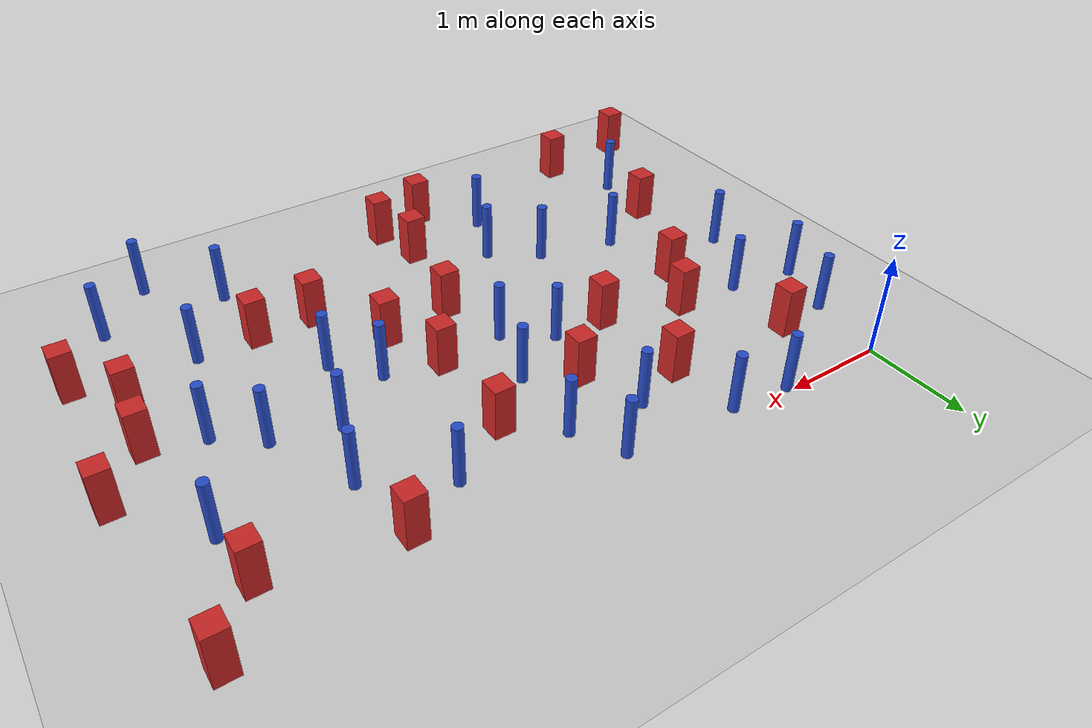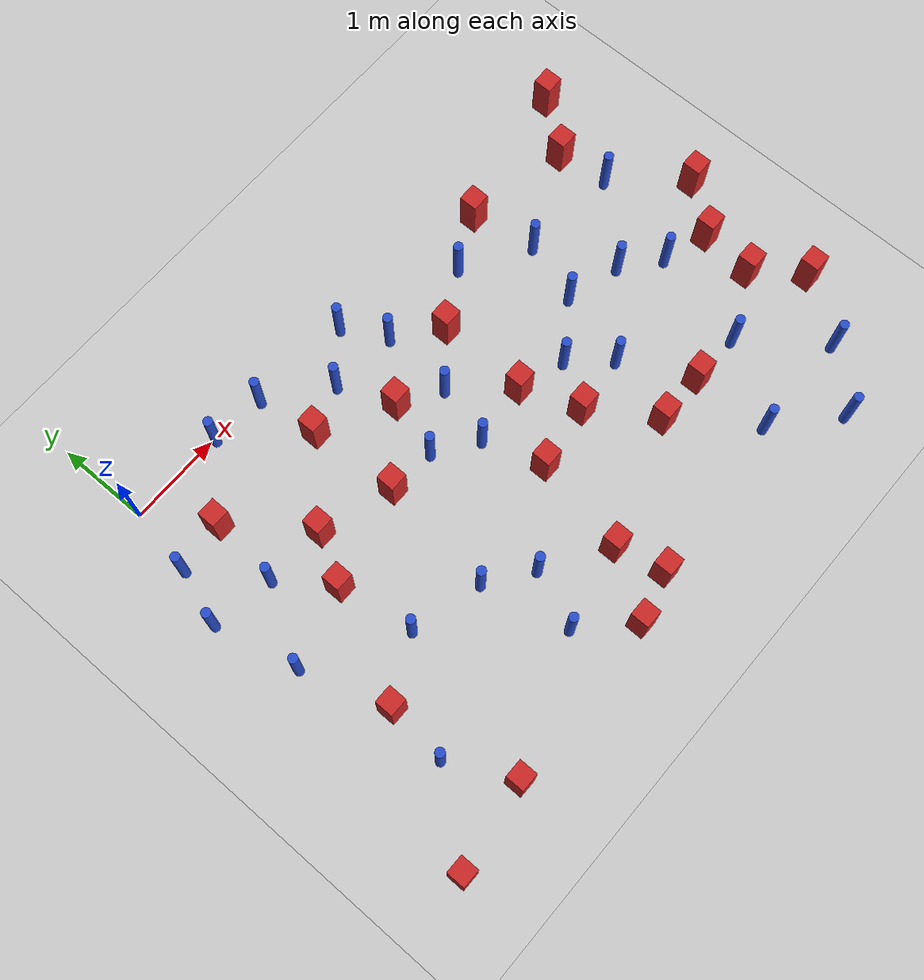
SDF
<sdf version="1.6">
 <world name="default">
  <model name="ground_plane">
   <static>1</static>
   <link name="link">
    <collision name="collision">
     <geometry><plane><normal>0 0 1</normal><size>100 100</size></plane></geometry>
     <surface><friction><ode><mu>100</mu><mu2>50</mu2></ode></friction></surface>
    </collision>
    <visual name="visual">
     <cast_shadows>0</cast_shadows>
     <geometry><plane><normal>0 0 1</normal><size>100 100</size></plane></geometry>
     <material>
      <ambient>1.0 1.0 1.0 1.0</ambient>
      <diffuse>0.8 0.8 0.8 1.0</diffuse>
      <specular>0.01 0.01 0.01 1.000000</specular>
     </material>
    </visual>
   </link>
  </model>
  <model name="square_post_obstacle1">
   <static>true</static>
   <pose>2.94212230356 -2.67743986622 -6.11067671241e-07 -5.50515727128e-06 -8.79689657224e-07 2.37013304536e-05</pose>
   <link name="link">
    <pose>0 0 0.25 0 -0 0</pose>
    <inertial>
     <mass>100</mass>
     <inertia>
      <ixx>0.166667</ixx>
      <ixy>0</ixy>
      <ixz>0</ixz>
      <iyy>0.166667</iyy>
      <iyz>0</iyz>
      <izz>0.166667</izz>
     </inertia>
    </inertial>
    <collision name="collision"><geometry><box><size>.2 .2 .5</size></box></geometry></collision>
    <visual name="visual">
     <geometry><box><size>.2 .2 .5</size></box></geometry>
     <material>
      <script><name>Gazebo/Red</name><uri>file://media/materials/scripts/gazebo.material</uri></script>
     </material>
    </visual>
   </link>
  </model>
  <model name="pole_obstacle0">
   <static>true</static>
   <pose>-0.314921129882 -1.32646130541 -9.47619616065e-06 5.49618799738e-07 2.3631041406e-07 -1.550905348e-07</pose>
   <link name="link">
    <pose>0 0 0.3 0 -0 0</pose>
    <inertial>
     <mass>1</mass>
     <inertia><ixx>0.145833</ixx><ixy>0</ixy><ixz>0</ixz><iyy>0.145833</iyy><iyz>0</iyz><izz>0.125</izz></inertia>
    </inertial>
    <collision name="collision">
     <geometry><cylinder><radius>0.05</radius><length>.6</length></cylinder></geometry>
    </collision>
    <visual name="visual">
     <geometry><cylinder><radius>0.05</radius><length>.6</length></cylinder></geometry>
     <material>
      <script><name>Gazebo/Blue</name><uri>file://media/materials/scripts/gazebo.material</uri></script>
     </material>
    </visual>
   </link>
  </model>
  <model name="pole_obstacle1">
   <static>true</static>
   <pose>1.61974641759 -2.97407490253 -9.47619616065e-06 5.49618799737e-07 2.36310414062e-07 -1.55090534798e-07</pose>
   <link name="link">
    <pose>0 0 0.3 0 -0 0</pose>
    <inertial>
     <mass>1</mass>
     <inertia><ixx>0.145833</ixx><ixy>0</ixy><ixz>0</ixz><iyy>0.145833</iyy><iyz>0</iyz><izz>0.125</izz></inertia>
    </inertial>
    <collision name="collision">
     <geometry><cylinder><radius>0.05</radius><length>.6</length></cylinder></geometry>
    </collision>
    <visual name="visual">
     <geometry><cylinder><radius>0.05</radius><length>.6</length></cylinder></geometry>
     <material>
      <script><name>Gazebo/Blue</name><uri>file://media/materials/scripts/gazebo.material</uri></script>
     </material>
    </visual>
   </link>
  </model>
  <model name="pole_obstacle2">
   <static>true</static>
   <pose>2.73644294295 -2.04410735157 -9.47619616065e-06 5.49618799737e-07 2.36310414068e-07 -1.55090534797e-07</pose>
   <link name="link">
    <pose>0 0 0.3 0 -0 0</pose>
    <inertial>
     <mass>1</mass>
     <inertia><ixx>0.145833</ixx><ixy>0</ixy><ixz>0</ixz><iyy>0.145833</iyy><iyz>0</iyz><izz>0.125</izz></inertia>
    </inertial>
    <collision name="collision">
     <geometry><cylinder><radius>0.05</radius><length>.6</length></cylinder></geometry>
    </collision>
    <visual name="visual">
     <geometry><cylinder><radius>0.05</radius><length>.6</length></cylinder></geometry>
     <material>
      <script><name>Gazebo/Blue</name><uri>file://media/materials/scripts/gazebo.material</uri></script>
     </material>
    </visual>
   </link>
  </model>
  <model name="square_post_obstacle8">
   <static>true</static>
   <pose>0.454852173999 -4.42956170193 -6.11067671241e-07 -5.50515727128e-06 -8.79689657224e-07 2.37013304536e-05</pose>
   <link name="link">
    <pose>0 0 0.25 0 -0 0</pose>
    <inertial>
     <mass>100</mass>
     <inertia>
      <ixx>0.166667</ixx>
      <ixy>0</ixy>
      <ixz>0</ixz>
      <iyy>0.166667</iyy>
      <iyz>0</iyz>
      <izz>0.166667</izz>
     </inertia>
    </inertial>
    <collision name="collision"><geometry><box><size>.2 .2 .5</size></box></geometry></collision>
    <visual name="visual">
     <geometry><box><size>.2 .2 .5</size></box></geometry>
     <material>
      <script><name>Gazebo/Red</name><uri>file://media/materials/scripts/gazebo.material</uri></script>
     </material>
    </visual>
   </link>
  </model>
  <model name="pole_obstacle9">
   <static>true</static>
   <pose>-0.106066016489 -2.21200483704 -9.47619616065e-06 5.49618799737e-07 2.36310414067e-07 -1.55090534797e-07</pose>
   <link name="link">
    <pose>0 0 0.3 0 -0 0</pose>
    <inertial>
     <mass>1</mass>
     <inertia><ixx>0.145833</ixx><ixy>0</ixy><ixz>0</ixz><iyy>0.145833</iyy><iyz>0</iyz><izz>0.125</izz></inertia>
    </inertial>
    <collision name="collision">
     <geometry><cylinder><radius>0.05</radius><length>.6</length></cylinder></geometry>
    </collision>
    <visual name="visual">
     <geometry><cylinder><radius>0.05</radius><length>.6</length></cylinder></geometry>
     <material>
      <script><name>Gazebo/Blue</name><uri>file://media/materials/scripts/gazebo.material</uri></script>
     </material>
    </visual>
   </link>
  </model>
  <model name="square_post_obstacle18">
   <static>true</static>
   <pose>1.72993242123 -0.749958943842 -6.11067671241e-07 -5.50515727128e-06 -8.79689657224e-07 2.37013304536e-05</pose>
   <link name="link">
    <pose>0 0 0.25 0 -0 0</pose>
    <inertial>
     <mass>100</mass>
     <inertia>
      <ixx>0.166667</ixx>
      <ixy>0</ixy>
      <ixz>0</ixz>
      <iyy>0.166667</iyy>
      <iyz>0</iyz>
      <izz>0.166667</izz>
     </inertia>
    </inertial>
    <collision name="collision"><geometry><box><size>.2 .2 .5</size></box></geometry></collision>
    <visual name="visual">
     <geometry><box><size>.2 .2 .5</size></box></geometry>
     <material>
      <script><name>Gazebo/Red</name><uri>file://media/materials/scripts/gazebo.material</uri></script>
     </material>
    </visual>
   </link>
  </model>
  <model name="pole_obstacle11">
   <static>true</static>
   <pose>5.82223751273 -4.05995197227 -9.47619616065e-06 5.49618799737e-07 2.36310414037e-07 -1.55090534814e-07</pose>
   <link name="link">
    <pose>0 0 0.3 0 -0 0</pose>
    <inertial>
     <mass>1</mass>
     <inertia><ixx>0.145833</ixx><ixy>0</ixy><ixz>0</ixz><iyy>0.145833</iyy><iyz>0</iyz><izz>0.125</izz></inertia>
    </inertial>
    <collision name="collision">
     <geometry><cylinder><radius>0.05</radius><length>.6</length></cylinder></geometry>
    </collision>
    <visual name="visual">
     <geometry><cylinder><radius>0.05</radius><length>.6</length></cylinder></geometry>
     <material>
      <script><name>Gazebo/Blue</name><uri>file://media/materials/scripts/gazebo.material</uri></script>
     </material>
    </visual>
   </link>
  </model>
  <model name="square_post_obstacle20">
   <static>true</static>
   <pose>2.73544408895 -3.70505050873 -6.11067671241e-07 -5.50515727128e-06 -8.79689657224e-07 2.37013304536e-05</pose>
   <link name="link">
    <pose>0 0 0.25 0 -0 0</pose>
    <inertial>
     <mass>100</mass>
     <inertia>
      <ixx>0.166667</ixx>
      <ixy>0</ixy>
      <ixz>0</ixz>
      <iyy>0.166667</iyy>
      <iyz>0</iyz>
      <izz>0.166667</izz>
     </inertia>
    </inertial>
    <collision name="collision"><geometry><box><size>.2 .2 .5</size></box></geometry></collision>
    <visual name="visual">
     <geometry><box><size>.2 .2 .5</size></box></geometry>
     <material>
      <script><name>Gazebo/Red</name><uri>file://media/materials/scripts/gazebo.material</uri></script>
     </material>
    </visual>
   </link>
  </model>
  <model name="square_post_obstacle25">
   <static>true</static>
   <pose>5.96807700137 -2.33672775051 -6.11067671241e-07 -5.50515727128e-06 -8.79689657224e-07 2.37013304536e-05</pose>
   <link name="link">
    <pose>0 0 0.25 0 -0 0</pose>
    <inertial>
     <mass>100</mass>
     <inertia>
      <ixx>0.166667</ixx>
      <ixy>0</ixy>
      <ixz>0</ixz>
      <iyy>0.166667</iyy>
      <iyz>0</iyz>
      <izz>0.166667</izz>
     </inertia>
    </inertial>
    <collision name="collision"><geometry><box><size>.2 .2 .5</size></box></geometry></collision>
    <visual name="visual">
     <geometry><box><size>.2 .2 .5</size></box></geometry>
     <material>
      <script><name>Gazebo/Red</name><uri>file://media/materials/scripts/gazebo.material</uri></script>
     </material>
    </visual>
   </link>
  </model>
  <model name="square_post_obstacle30">
   <static>true</static>
   <pose>2.47274782029 -1.15429920534 -6.11067671241e-07 -5.50515727128e-06 -8.79689657224e-07 2.37013304536e-05</pose>
   <link name="link">
    <pose>0 0 0.25 0 -0 0</pose>
    <inertial>
     <mass>100</mass>
     <inertia>
      <ixx>0.166667</ixx>
      <ixy>0</ixy>
      <ixz>0</ixz>
      <iyy>0.166667</iyy>
      <iyz>0</iyz>
      <izz>0.166667</izz>
     </inertia>
    </inertial>
    <collision name="collision"><geometry><box><size>.2 .2 .5</size></box></geometry></collision>
    <visual name="visual">
     <geometry><box><size>.2 .2 .5</size></box></geometry>
     <material>
      <script><name>Gazebo/Red</name><uri>file://media/materials/scripts/gazebo.material</uri></script>
     </material>
    </visual>
   </link>
  </model>
  <model name="pole_obstacle24">
   <static>true</static>
   <pose>2.72150293839 -0.171318101802 -9.47619616065e-06 5.49618799738e-07 2.36310414078e-07 -1.55090534791e-07</pose>
   <link name="link">
    <pose>0 0 0.3 0 -0 0</pose>
    <inertial>
     <mass>1</mass>
     <inertia><ixx>0.145833</ixx><ixy>0</ixy><ixz>0</ixz><iyy>0.145833</iyy><iyz>0</iyz><izz>0.125</izz></inertia>
    </inertial>
    <collision name="collision">
     <geometry><cylinder><radius>0.05</radius><length>.6</length></cylinder></geometry>
    </collision>
    <visual name="visual">
     <geometry><cylinder><radius>0.05</radius><length>.6</length></cylinder></geometry>
     <material>
      <script><name>Gazebo/Blue</name><uri>file://media/materials/scripts/gazebo.material</uri></script>
     </material>
    </visual>
   </link>
  </model>
  <model name="pole_obstacle30">
   <static>true</static>
   <pose>0.856079274382 -2.77888932813 -9.47619616065e-06 5.49618799737e-07 2.36310414066e-07 -1.55090534797e-07</pose>
   <link name="link">
    <pose>0 0 0.3 0 -0 0</pose>
    <inertial>
     <mass>1</mass>
     <inertia><ixx>0.145833</ixx><ixy>0</ixy><ixz>0</ixz><iyy>0.145833</iyy><iyz>0</iyz><izz>0.125</izz></inertia>
    </inertial>
    <collision name="collision">
     <geometry><cylinder><radius>0.05</radius><length>.6</length></cylinder></geometry>
    </collision>
    <visual name="visual">
     <geometry><cylinder><radius>0.05</radius><length>.6</length></cylinder></geometry>
     <material>
      <script><name>Gazebo/Blue</name><uri>file://media/materials/scripts/gazebo.material</uri></script>
     </material>
    </visual>
   </link>
  </model>
  <model name="square_post_obstacle38">
   <static>true</static>
   <pose>5.90269975927 -2.90858548507 -6.11067671241e-07 -5.50515727128e-06 -8.79689657224e-07 2.37013304536e-05</pose>
   <link name="link">
    <pose>0 0 0.25 0 -0 0</pose>
    <inertial>
     <mass>100</mass>
     <inertia>
      <ixx>0.166667</ixx>
      <ixy>0</ixy>
      <ixz>0</ixz>
      <iyy>0.166667</iyy>
      <iyz>0</iyz>
      <izz>0.166667</izz>
     </inertia>
    </inertial>
    <collision name="collision"><geometry><box><size>.2 .2 .5</size></box></geometry></collision>
    <visual name="visual">
     <geometry><box><size>.2 .2 .5</size></box></geometry>
     <material>
      <script><name>Gazebo/Red</name><uri>file://media/materials/scripts/gazebo.material</uri></script>
     </material>
    </visual>
   </link>
  </model>
  <model name="pole_obstacle45">
   <static>true</static>
   <pose>1.03866609675 -0.046950758375 -9.47619616065e-06 5.49618799737e-07 2.36310414067e-07 -1.55090534796e-07</pose>
   <link name="link">
    <pose>0 0 0.3 0 -0 0</pose>
    <inertial>
     <mass>1</mass>
     <inertia><ixx>0.145833</ixx><ixy>0</ixy><ixz>0</ixz><iyy>0.145833</iyy><iyz>0</iyz><izz>0.125</izz></inertia>
    </inertial>
    <collision name="collision">
     <geometry><cylinder><radius>0.05</radius><length>.6</length></cylinder></geometry>
    </collision>
    <visual name="visual">
     <geometry><cylinder><radius>0.05</radius><length>.6</length></cylinder></geometry>
     <material>
      <script><name>Gazebo/Blue</name><uri>file://media/materials/scripts/gazebo.material</uri></script>
     </material>
    </visual>
   </link>
  </model>
  <model name="square_post_obstacle43">
   <static>true</static>
   <pose>1.01374531851 -1.47006053534 -6.11067671241e-07 -5.50515727128e-06 -8.79689657224e-07 2.37013304536e-05</pose>
   <link name="link">
    <pose>0 0 0.25 0 -0 0</pose>
    <inertial>
     <mass>100</mass>
     <inertia>
      <ixx>0.166667</ixx>
      <ixy>0</ixy>
      <ixz>0</ixz>
      <iyy>0.166667</iyy>
      <iyz>0</iyz>
      <izz>0.166667</izz>
     </inertia>
    </inertial>
    <collision name="collision"><geometry><box><size>.2 .2 .5</size></box></geometry></collision>
    <visual name="visual">
     <geometry><box><size>.2 .2 .5</size></box></geometry>
     <material>
      <script><name>Gazebo/Red</name><uri>file://media/materials/scripts/gazebo.material</uri></script>
     </material>
    </visual>
   </link>
  </model>
  <model name="square_post_obstacle45">
   <static>true</static>
   <pose>2.32508349181 -4.35911768227 -6.11067671241e-07 -5.50515727128e-06 -8.79689657224e-07 2.37013304536e-05</pose>
   <link name="link">
    <pose>0 0 0.25 0 -0 0</pose>
    <inertial>
     <mass>100</mass>
     <inertia>
      <ixx>0.166667</ixx>
      <ixy>0</ixy>
      <ixz>0</ixz>
      <iyy>0.166667</iyy>
      <iyz>0</iyz>
      <izz>0.166667</izz>
     </inertia>
    </inertial>
    <collision name="collision"><geometry><box><size>.2 .2 .5</size></box></geometry></collision>
    <visual name="visual">
     <geometry><box><size>.2 .2 .5</size></box></geometry>
     <material>
      <script><name>Gazebo/Red</name><uri>file://media/materials/scripts/gazebo.material</uri></script>
     </material>
    </visual>
   </link>
  </model>
  <model name="pole_obstacle59">
   <static>true</static>
   <pose>2.90515638985 -1.41550431469 -9.47619616065e-06 5.49618799737e-07 2.36310414072e-07 -1.55090534793e-07</pose>
   <link name="link">
    <pose>0 0 0.3 0 -0 0</pose>
    <inertial>
     <mass>1</mass>
     <inertia><ixx>0.145833</ixx><ixy>0</ixy><ixz>0</ixz><iyy>0.145833</iyy><iyz>0</iyz><izz>0.125</izz></inertia>
    </inertial>
    <collision name="collision">
     <geometry><cylinder><radius>0.05</radius><length>.6</length></cylinder></geometry>
    </collision>
    <visual name="visual">
     <geometry><cylinder><radius>0.05</radius><length>.6</length></cylinder></geometry>
     <material>
      <script><name>Gazebo/Blue</name><uri>file://media/materials/scripts/gazebo.material</uri></script>
     </material>
    </visual>
   </link>
  </model>
  <model name="square_post_obstacle62">
   <static>true</static>
   <pose>5.72174047184 -0.590726799477 -6.11067671241e-07 -5.50515727128e-06 -8.79689657224e-07 2.37013304536e-05</pose>
   <link name="link">
    <pose>0 0 0.25 0 -0 0</pose>
    <inertial>
     <mass>100</mass>
     <inertia>
      <ixx>0.166667</ixx>
      <ixy>0</ixy>
      <ixz>0</ixz>
      <iyy>0.166667</iyy>
      <iyz>0</iyz>
      <izz>0.166667</izz>
     </inertia>
    </inertial>
    <collision name="collision"><geometry><box><size>.2 .2 .5</size></box></geometry></collision>
    <visual name="visual">
     <geometry><box><size>.2 .2 .5</size></box></geometry>
     <material>
      <script><name>Gazebo/Red</name><uri>file://media/materials/scripts/gazebo.material</uri></script>
     </material>
    </visual>
   </link>
  </model>
  <model name="square_post_obstacle65">
   <static>true</static>
   <pose>6.28163538633 -3.40447437227 -6.11067671241e-07 -5.50515727128e-06 -8.79689657224e-07 2.37013304536e-05</pose>
   <link name="link">
    <pose>0 0 0.25 0 -0 0</pose>
    <inertial>
     <mass>100</mass>
     <inertia>
      <ixx>0.166667</ixx>
      <ixy>0</ixy>
      <ixz>0</ixz>
      <iyy>0.166667</iyy>
      <iyz>0</iyz>
      <izz>0.166667</izz>
     </inertia>
    </inertial>
    <collision name="collision"><geometry><box><size>.2 .2 .5</size></box></geometry></collision>
    <visual name="visual">
     <geometry><box><size>.2 .2 .5</size></box></geometry>
     <material>
      <script><name>Gazebo/Red</name><uri>file://media/materials/scripts/gazebo.material</uri></script>
     </material>
    </visual>
   </link>
  </model>
  <model name="square_post_obstacle74">
   <static>true</static>
   <pose>0.426725111001 -0.679872367077 -6.11067671241e-07 -5.50515727128e-06 -8.79689657224e-07 2.37013304536e-05</pose>
   <link name="link">
    <pose>0 0 0.25 0 -0 0</pose>
    <inertial>
     <mass>100</mass>
     <inertia>
      <ixx>0.166667</ixx>
      <ixy>0</ixy>
      <ixz>0</ixz>
      <iyy>0.166667</iyy>
      <iyz>0</iyz>
      <izz>0.166667</izz>
     </inertia>
    </inertial>
    <collision name="collision"><geometry><box><size>.2 .2 .5</size></box></geometry></collision>
    <visual name="visual">
     <geometry><box><size>.2 .2 .5</size></box></geometry>
     <material>
      <script><name>Gazebo/Red</name><uri>file://media/materials/scripts/gazebo.material</uri></script>
     </material>
    </visual>
   </link>
  </model>
  <model name="pole_obstacle80">
   <static>true</static>
   <pose>4.49541165035 -1.71532405084 -9.47619616065e-06 5.49618799738e-07 2.36310414071e-07 -1.55090534796e-07</pose>
   <link name="link">
    <pose>0 0 0.3 0 -0 0</pose>
    <inertial>
     <mass>1</mass>
     <inertia><ixx>0.145833</ixx><ixy>0</ixy><ixz>0</ixz><iyy>0.145833</iyy><iyz>0</iyz><izz>0.125</izz></inertia>
    </inertial>
    <collision name="collision">
     <geometry><cylinder><radius>0.05</radius><length>.6</length></cylinder></geometry>
    </collision>
    <visual name="visual">
     <geometry><cylinder><radius>0.05</radius><length>.6</length></cylinder></geometry>
     <material>
      <script><name>Gazebo/Blue</name><uri>file://media/materials/scripts/gazebo.material</uri></script>
     </material>
    </visual>
   </link>
  </model>
  <model name="pole_obstacle81">
   <static>true</static>
   <pose>2.30308376379 -1.74727004532 -9.47619616065e-06 5.49618799737e-07 2.36310414072e-07 -1.55090534793e-07</pose>
   <link name="link">
    <pose>0 0 0.3 0 -0 0</pose>
    <inertial>
     <mass>1</mass>
     <inertia><ixx>0.145833</ixx><ixy>0</ixy><ixz>0</ixz><iyy>0.145833</iyy><iyz>0</iyz><izz>0.125</izz></inertia>
    </inertial>
    <collision name="collision">
     <geometry><cylinder><radius>0.05</radius><length>.6</length></cylinder></geometry>
    </collision>
    <visual name="visual">
     <geometry><cylinder><radius>0.05</radius><length>.6</length></cylinder></geometry>
     <material>
      <script><name>Gazebo/Blue</name><uri>file://media/materials/scripts/gazebo.material</uri></script>
     </material>
    </visual>
   </link>
  </model>
  <model name="pole_obstacle82">
   <static>true</static>
   <pose>0.123861087999 -3.7640996204 -9.47619616065e-06 5.49618799737e-07 2.36310414062e-07 -1.55090534799e-07</pose>
   <link name="link">
    <pose>0 0 0.3 0 -0 0</pose>
    <inertial>
     <mass>1</mass>
     <inertia><ixx>0.145833</ixx><ixy>0</ixy><ixz>0</ixz><iyy>0.145833</iyy><iyz>0</iyz><izz>0.125</izz></inertia>
    </inertial>
    <collision name="collision">
     <geometry><cylinder><radius>0.05</radius><length>.6</length></cylinder></geometry>
    </collision>
    <visual name="visual">
     <geometry><cylinder><radius>0.05</radius><length>.6</length></cylinder></geometry>
     <material>
      <script><name>Gazebo/Blue</name><uri>file://media/materials/scripts/gazebo.material</uri></script>
     </material>
    </visual>
   </link>
  </model>
  <model name="pole_obstacle83">
   <static>true</static>
   <pose>4.2634596147 -2.51237406873 -9.47619616065e-06 5.49618799738e-07 2.36310414051e-07 -1.55090534805e-07</pose>
   <link name="link">
    <pose>0 0 0.3 0 -0 0</pose>
    <inertial>
     <mass>1</mass>
     <inertia><ixx>0.145833</ixx><ixy>0</ixy><ixz>0</ixz><iyy>0.145833</iyy><iyz>0</iyz><izz>0.125</izz></inertia>
    </inertial>
    <collision name="collision">
     <geometry><cylinder><radius>0.05</radius><length>.6</length></cylinder></geometry>
    </collision>
    <visual name="visual">
     <geometry><cylinder><radius>0.05</radius><length>.6</length></cylinder></geometry>
     <material>
      <script><name>Gazebo/Blue</name><uri>file://media/materials/scripts/gazebo.material</uri></script>
     </material>
    </visual>
   </link>
  </model>
  <model name="square_post_obstacle83">
   <static>true</static>
   <pose>2.85186152384 -4.2181976456 -6.11067671241e-07 -5.50515727128e-06 -8.79689657224e-07 2.37013304536e-05</pose>
   <link name="link">
    <pose>0 0 0.25 0 -0 0</pose>
    <inertial>
     <mass>100</mass>
     <inertia>
      <ixx>0.166667</ixx>
      <ixy>0</ixy>
      <ixz>0</ixz>
      <iyy>0.166667</iyy>
      <iyz>0</iyz>
      <izz>0.166667</izz>
     </inertia>
    </inertial>
    <collision name="collision"><geometry><box><size>.2 .2 .5</size></box></geometry></collision>
    <visual name="visual">
     <geometry><box><size>.2 .2 .5</size></box></geometry>
     <material>
      <script><name>Gazebo/Red</name><uri>file://media/materials/scripts/gazebo.material</uri></script>
     </material>
    </visual>
   </link>
  </model>
  <model name="pole_obstacle101">
   <static>true</static>
   <pose>5.20482218986 -3.25661595444 -9.47619616065e-06 5.49618799738e-07 2.36310414051e-07 -1.55090534805e-07</pose>
   <link name="link">
    <pose>0 0 0.3 0 -0 0</pose>
    <inertial>
     <mass>1</mass>
     <inertia><ixx>0.145833</ixx><ixy>0</ixy><ixz>0</ixz><iyy>0.145833</iyy><iyz>0</iyz><izz>0.125</izz></inertia>
    </inertial>
    <collision name="collision">
     <geometry><cylinder><radius>0.05</radius><length>.6</length></cylinder></geometry>
    </collision>
    <visual name="visual">
     <geometry><cylinder><radius>0.05</radius><length>.6</length></cylinder></geometry>
     <material>
      <script><name>Gazebo/Blue</name><uri>file://media/materials/scripts/gazebo.material</uri></script>
     </material>
    </visual>
   </link>
  </model>
  <model name="pole_obstacle109">
   <static>true</static>
   <pose>4.66306716361 -4.0641793863 -9.47619616065e-06 5.49618799737e-07 2.36310414037e-07 -1.55090534814e-07</pose>
   <link name="link">
    <pose>0 0 0.3 0 -0 0</pose>
    <inertial>
     <mass>1</mass>
     <inertia><ixx>0.145833</ixx><ixy>0</ixy><ixz>0</ixz><iyy>0.145833</iyy><iyz>0</iyz><izz>0.125</izz></inertia>
    </inertial>
    <collision name="collision">
     <geometry><cylinder><radius>0.05</radius><length>.6</length></cylinder></geometry>
    </collision>
    <visual name="visual">
     <geometry><cylinder><radius>0.05</radius><length>.6</length></cylinder></geometry>
     <material>
      <script><name>Gazebo/Blue</name><uri>file://media/materials/scripts/gazebo.material</uri></script>
     </material>
    </visual>
   </link>
  </model>
  <model name="pole_obstacle111">
   <static>true</static>
   <pose>5.08490914822 -1.87279756794 -9.47619616065e-06 5.49618799738e-07 2.36310414071e-07 -1.55090534796e-07</pose>
   <link name="link">
    <pose>0 0 0.3 0 -0 0</pose>
    <inertial>
     <mass>1</mass>
     <inertia><ixx>0.145833</ixx><ixy>0</ixy><ixz>0</ixz><iyy>0.145833</iyy><iyz>0</iyz><izz>0.125</izz></inertia>
    </inertial>
    <collision name="collision">
     <geometry><cylinder><radius>0.05</radius><length>.6</length></cylinder></geometry>
    </collision>
    <visual name="visual">
     <geometry><cylinder><radius>0.05</radius><length>.6</length></cylinder></geometry>
     <material>
      <script><name>Gazebo/Blue</name><uri>file://media/materials/scripts/gazebo.material</uri></script>
     </material>
    </visual>
   </link>
  </model>
  <model name="square_post_obstacle101">
   <static>true</static>
   <pose>3.4201102514 -0.991289049352 -6.11067671241e-07 -5.50515727128e-06 -8.79689657224e-07 2.37013304536e-05</pose>
   <link name="link">
    <pose>0 0 0.25 0 -0 0</pose>
    <inertial>
     <mass>100</mass>
     <inertia>
      <ixx>0.166667</ixx>
      <ixy>0</ixy>
      <ixz>0</ixz>
      <iyy>0.166667</iyy>
      <iyz>0</iyz>
      <izz>0.166667</izz>
     </inertia>
    </inertial>
    <collision name="collision"><geometry><box><size>.2 .2 .5</size></box></geometry></collision>
    <visual name="visual">
     <geometry><box><size>.2 .2 .5</size></box></geometry>
     <material>
      <script><name>Gazebo/Red</name><uri>file://media/materials/scripts/gazebo.material</uri></script>
     </material>
    </visual>
   </link>
  </model>
  <model name="pole_obstacle118">
   <static>true</static>
   <pose>1.83750794108 -3.89120058426 -9.47619616065e-06 5.49618799737e-07 2.36310414062e-07 -1.55090534798e-07</pose>
   <link name="link">
    <pose>0 0 0.3 0 -0 0</pose>
    <inertial>
     <mass>1</mass>
     <inertia><ixx>0.145833</ixx><ixy>0</ixy><ixz>0</ixz><iyy>0.145833</iyy><iyz>0</iyz><izz>0.125</izz></inertia>
    </inertial>
    <collision name="collision">
     <geometry><cylinder><radius>0.05</radius><length>.6</length></cylinder></geometry>
    </collision>
    <visual name="visual">
     <geometry><cylinder><radius>0.05</radius><length>.6</length></cylinder></geometry>
     <material>
      <script><name>Gazebo/Blue</name><uri>file://media/materials/scripts/gazebo.material</uri></script>
     </material>
    </visual>
   </link>
  </model>
  <model name="square_post_obstacle110">
   <static>true</static>
   <pose>-0.503744331881 -4.56569090936 -6.11067671241e-07 -5.50515727128e-06 -8.79689657224e-07 2.37013304536e-05</pose>
   <link name="link">
    <pose>0 0 0.25 0 -0 0</pose>
    <inertial>
     <mass>100</mass>
     <inertia>
      <ixx>0.166667</ixx>
      <ixy>0</ixy>
      <ixz>0</ixz>
      <iyy>0.166667</iyy>
      <iyz>0</iyz>
      <izz>0.166667</izz>
     </inertia>
    </inertial>
    <collision name="collision"><geometry><box><size>.2 .2 .5</size></box></geometry></collision>
    <visual name="visual">
     <geometry><box><size>.2 .2 .5</size></box></geometry>
     <material>
      <script><name>Gazebo/Red</name><uri>file://media/materials/scripts/gazebo.material</uri></script>
     </material>
    </visual>
   </link>
  </model>
  <model name="square_post_obstacle111">
   <static>true</static>
   <pose>0.193702998477 -3.11664163516 -6.11067671241e-07 -5.50515727128e-06 -8.79689657224e-07 2.37013304536e-05</pose>
   <link name="link">
    <pose>0 0 0.25 0 -0 0</pose>
    <inertial>
     <mass>100</mass>
     <inertia>
      <ixx>0.166667</ixx>
      <ixy>0</ixy>
      <ixz>0</ixz>
      <iyy>0.166667</iyy>
      <iyz>0</iyz>
      <izz>0.166667</izz>
     </inertia>
    </inertial>
    <collision name="collision"><geometry><box><size>.2 .2 .5</size></box></geometry></collision>
    <visual name="visual">
     <geometry><box><size>.2 .2 .5</size></box></geometry>
     <material>
      <script><name>Gazebo/Red</name><uri>file://media/materials/scripts/gazebo.material</uri></script>
     </material>
    </visual>
   </link>
  </model>
  <model name="pole_obstacle135">
   <static>true</static>
   <pose>2.96625117148 -0.627335634053 -9.47619616065e-06 5.49618799738e-07 2.36310414075e-07 -1.55090534793e-07</pose>
   <link name="link">
    <pose>0 0 0.3 0 -0 0</pose>
    <inertial>
     <mass>1</mass>
     <inertia><ixx>0.145833</ixx><ixy>0</ixy><ixz>0</ixz><iyy>0.145833</iyy><iyz>0</iyz><izz>0.125</izz></inertia>
    </inertial>
    <collision name="collision">
     <geometry><cylinder><radius>0.05</radius><length>.6</length></cylinder></geometry>
    </collision>
    <visual name="visual">
     <geometry><cylinder><radius>0.05</radius><length>.6</length></cylinder></geometry>
     <material>
      <script><name>Gazebo/Blue</name><uri>file://media/materials/scripts/gazebo.material</uri></script>
     </material>
    </visual>
   </link>
  </model>
  <model name="square_post_obstacle125">
   <static>true</static>
   <pose>6.14231745968 -0.0544608483322 -6.11067671241e-07 -5.50515727128e-06 -8.79689657224e-07 2.37013304536e-05</pose>
   <link name="link">
    <pose>0 0 0.25 0 -0 0</pose>
    <inertial>
     <mass>100</mass>
     <inertia>
      <ixx>0.166667</ixx>
      <ixy>0</ixy>
      <ixz>0</ixz>
      <iyy>0.166667</iyy>
      <iyz>0</iyz>
      <izz>0.166667</izz>
     </inertia>
    </inertial>
    <collision name="collision"><geometry><box><size>.2 .2 .5</size></box></geometry></collision>
    <visual name="visual">
     <geometry><box><size>.2 .2 .5</size></box></geometry>
     <material>
      <script><name>Gazebo/Red</name><uri>file://media/materials/scripts/gazebo.material</uri></script>
     </material>
    </visual>
   </link>
  </model>
  <model name="square_post_obstacle134">
   <static>true</static>
   <pose>1.79091118981 -1.71233193245 -6.11067671241e-07 -5.50515727128e-06 -8.79689657224e-07 2.37013304536e-05</pose>
   <link name="link">
    <pose>0 0 0.25 0 -0 0</pose>
    <inertial>
     <mass>100</mass>
     <inertia>
      <ixx>0.166667</ixx>
      <ixy>0</ixy>
      <ixz>0</ixz>
      <iyy>0.166667</iyy>
      <iyz>0</iyz>
      <izz>0.166667</izz>
     </inertia>
    </inertial>
    <collision name="collision"><geometry><box><size>.2 .2 .5</size></box></geometry></collision>
    <visual name="visual">
     <geometry><box><size>.2 .2 .5</size></box></geometry>
     <material>
      <script><name>Gazebo/Red</name><uri>file://media/materials/scripts/gazebo.material</uri></script>
     </material>
    </visual>
   </link>
  </model>
  <model name="pole_obstacle145">
   <static>true</static>
   <pose>3.91056245593 -2.11943840566 -9.47619616065e-06 5.49618799737e-07 2.36310414051e-07 -1.55090534807e-07</pose>
   <link name="link">
    <pose>0 0 0.3 0 -0 0</pose>
    <inertial>
     <mass>1</mass>
     <inertia><ixx>0.145833</ixx><ixy>0</ixy><ixz>0</ixz><iyy>0.145833</iyy><iyz>0</iyz><izz>0.125</izz></inertia>
    </inertial>
    <collision name="collision">
     <geometry><cylinder><radius>0.05</radius><length>.6</length></cylinder></geometry>
    </collision>
    <visual name="visual">
     <geometry><cylinder><radius>0.05</radius><length>.6</length></cylinder></geometry>
     <material>
      <script><name>Gazebo/Blue</name><uri>file://media/materials/scripts/gazebo.material</uri></script>
     </material>
    </visual>
   </link>
  </model>
  <model name="square_post_obstacle142">
   <static>true</static>
   <pose>4.63835007437 -3.24127723713 -6.11067671241e-07 -5.50515727128e-06 -8.79689657224e-07 2.37013304536e-05</pose>
   <link name="link">
    <pose>0 0 0.25 0 -0 0</pose>
    <inertial>
     <mass>100</mass>
     <inertia>
      <ixx>0.166667</ixx>
      <ixy>0</ixy>
      <ixz>0</ixz>
      <iyy>0.166667</iyy>
      <iyz>0</iyz>
      <izz>0.166667</izz>
     </inertia>
    </inertial>
    <collision name="collision"><geometry><box><size>.2 .2 .5</size></box></geometry></collision>
    <visual name="visual">
     <geometry><box><size>.2 .2 .5</size></box></geometry>
     <material>
      <script><name>Gazebo/Red</name><uri>file://media/materials/scripts/gazebo.material</uri></script>
     </material>
    </visual>
   </link>
  </model>
  <model name="square_post_obstacle149">
   <static>true</static>
   <pose>3.39545936087 -1.96329363352 -6.11067671241e-07 -5.50515727128e-06 -8.79689657224e-07 2.37013304536e-05</pose>
   <link name="link">
    <pose>0 0 0.25 0 -0 0</pose>
    <inertial>
     <mass>100</mass>
     <inertia>
      <ixx>0.166667</ixx>
      <ixy>0</ixy>
      <ixz>0</ixz>
      <iyy>0.166667</iyy>
      <iyz>0</iyz>
      <izz>0.166667</izz>
     </inertia>
    </inertial>
    <collision name="collision"><geometry><box><size>.2 .2 .5</size></box></geometry></collision>
    <visual name="visual">
     <geometry><box><size>.2 .2 .5</size></box></geometry>
     <material>
      <script><name>Gazebo/Red</name><uri>file://media/materials/scripts/gazebo.material</uri></script>
     </material>
    </visual>
   </link>
  </model>
  <model name="pole_obstacle159">
   <static>true</static>
   <pose>4.70719929004 -1.06606257416 -9.47619616065e-06 5.49618799738e-07 2.36310414071e-07 -1.55090534796e-07</pose>
   <link name="link">
    <pose>0 0 0.3 0 -0 0</pose>
    <inertial>
     <mass>1</mass>
     <inertia><ixx>0.145833</ixx><ixy>0</ixy><ixz>0</ixz><iyy>0.145833</iyy><iyz>0</iyz><izz>0.125</izz></inertia>
    </inertial>
    <collision name="collision">
     <geometry><cylinder><radius>0.05</radius><length>.6</length></cylinder></geometry>
    </collision>
    <visual name="visual">
     <geometry><cylinder><radius>0.05</radius><length>.6</length></cylinder></geometry>
     <material>
      <script><name>Gazebo/Blue</name><uri>file://media/materials/scripts/gazebo.material</uri></script>
     </material>
    </visual>
   </link>
  </model>
  <model name="pole_obstacle165">
   <static>true</static>
   <pose>5.79443434889 -1.13917983146 -9.47619616065e-06 5.49618799738e-07 2.36310414071e-07 -1.55090534796e-07</pose>
   <link name="link">
    <pose>0 0 0.3 0 -0 0</pose>
    <inertial>
     <mass>1</mass>
     <inertia><ixx>0.145833</ixx><ixy>0</ixy><ixz>0</ixz><iyy>0.145833</iyy><iyz>0</iyz><izz>0.125</izz></inertia>
    </inertial>
    <collision name="collision">
     <geometry><cylinder><radius>0.05</radius><length>.6</length></cylinder></geometry>
    </collision>
    <visual name="visual">
     <geometry><cylinder><radius>0.05</radius><length>.6</length></cylinder></geometry>
     <material>
      <script><name>Gazebo/Blue</name><uri>file://media/materials/scripts/gazebo.material</uri></script>
     </material>
    </visual>
   </link>
  </model>
  <model name="pole_obstacle168">
   <static>true</static>
   <pose>5.47957926428 -2.18587795787 -9.47619616065e-06 5.49618799738e-07 2.36310414051e-07 -1.55090534805e-07</pose>
   <link name="link">
    <pose>0 0 0.3 0 -0 0</pose>
    <inertial>
     <mass>1</mass>
     <inertia><ixx>0.145833</ixx><ixy>0</ixy><ixz>0</ixz><iyy>0.145833</iyy><iyz>0</iyz><izz>0.125</izz></inertia>
    </inertial>
    <collision name="collision">
     <geometry><cylinder><radius>0.05</radius><length>.6</length></cylinder></geometry>
    </collision>
    <visual name="visual">
     <geometry><cylinder><radius>0.05</radius><length>.6</length></cylinder></geometry>
     <material>
      <script><name>Gazebo/Blue</name><uri>file://media/materials/scripts/gazebo.material</uri></script>
     </material>
    </visual>
   </link>
  </model>
  <model name="pole_obstacle176">
   <static>true</static>
   <pose>5.29055983423 -4.6071267664 -9.47619616065e-06 5.49618799737e-07 2.36310414037e-07 -1.55090534814e-07</pose>
   <link name="link">
    <pose>0 0 0.3 0 -0 0</pose>
    <inertial>
     <mass>1</mass>
     <inertia><ixx>0.145833</ixx><ixy>0</ixy><ixz>0</ixz><iyy>0.145833</iyy><iyz>0</iyz><izz>0.125</izz></inertia>
    </inertial>
    <collision name="collision">
     <geometry><cylinder><radius>0.05</radius><length>.6</length></cylinder></geometry>
    </collision>
    <visual name="visual">
     <geometry><cylinder><radius>0.05</radius><length>.6</length></cylinder></geometry>
     <material>
      <script><name>Gazebo/Blue</name><uri>file://media/materials/scripts/gazebo.material</uri></script>
     </material>
    </visual>
   </link>
  </model>
  <model name="pole_obstacle186">
   <static>true</static>
   <pose>-0.120403408786 -0.74361236707 -9.47619616065e-06 5.49618799737e-07 2.36310414061e-07 -1.55090534799e-07</pose>
   <link name="link">
    <pose>0 0 0.3 0 -0 0</pose>
    <inertial>
     <mass>1</mass>
     <inertia><ixx>0.145833</ixx><ixy>0</ixy><ixz>0</ixz><iyy>0.145833</iyy><iyz>0</iyz><izz>0.125</izz></inertia>
    </inertial>
    <collision name="collision">
     <geometry><cylinder><radius>0.05</radius><length>.6</length></cylinder></geometry>
    </collision>
    <visual name="visual">
     <geometry><cylinder><radius>0.05</radius><length>.6</length></cylinder></geometry>
     <material>
      <script><name>Gazebo/Blue</name><uri>file://media/materials/scripts/gazebo.material</uri></script>
     </material>
    </visual>
   </link>
  </model>
  <model name="square_post_obstacle174">
   <static>true</static>
   <pose>4.07267116913 -3.25322080722 -6.11067671241e-07 -5.50515727128e-06 -8.79689657224e-07 2.37013304536e-05</pose>
   <link name="link">
    <pose>0 0 0.25 0 -0 0</pose>
    <inertial>
     <mass>100</mass>
     <inertia>
      <ixx>0.166667</ixx>
      <ixy>0</ixy>
      <ixz>0</ixz>
      <iyy>0.166667</iyy>
      <iyz>0</iyz>
      <izz>0.166667</izz>
     </inertia>
    </inertial>
    <collision name="collision"><geometry><box><size>.2 .2 .5</size></box></geometry></collision>
    <visual name="visual">
     <geometry><box><size>.2 .2 .5</size></box></geometry>
     <material>
      <script><name>Gazebo/Red</name><uri>file://media/materials/scripts/gazebo.material</uri></script>
     </material>
    </visual>
   </link>
  </model>
  <model name="square_post_obstacle177">
   <static>true</static>
   <pose>4.57761451843 -0.368148334891 -6.11067671241e-07 -5.50515727128e-06 -8.79689657224e-07 2.37013304536e-05</pose>
   <link name="link">
    <pose>0 0 0.25 0 -0 0</pose>
    <inertial>
     <mass>100</mass>
     <inertia>
      <ixx>0.166667</ixx>
      <ixy>0</ixy>
      <ixz>0</ixz>
      <iyy>0.166667</iyy>
      <iyz>0</iyz>
      <izz>0.166667</izz>
     </inertia>
    </inertial>
    <collision name="collision"><geometry><box><size>.2 .2 .5</size></box></geometry></collision>
    <visual name="visual">
     <geometry><box><size>.2 .2 .5</size></box></geometry>
     <material>
      <script><name>Gazebo/Red</name><uri>file://media/materials/scripts/gazebo.material</uri></script>
     </material>
    </visual>
   </link>
  </model>
  <model name="square_post_obstacle183">
   <static>true</static>
   <pose>6.38192467951 -1.83923580335 -6.11067671241e-07 -5.50515727128e-06 -8.79689657224e-07 2.37013304536e-05</pose>
   <link name="link">
    <pose>0 0 0.25 0 -0 0</pose>
    <inertial>
     <mass>100</mass>
     <inertia>
      <ixx>0.166667</ixx>
      <ixy>0</ixy>
      <ixz>0</ixz>
      <iyy>0.166667</iyy>
      <iyz>0</iyz>
      <izz>0.166667</izz>
     </inertia>
    </inertial>
    <collision name="collision"><geometry><box><size>.2 .2 .5</size></box></geometry></collision>
    <visual name="visual">
     <geometry><box><size>.2 .2 .5</size></box></geometry>
     <material>
      <script><name>Gazebo/Red</name><uri>file://media/materials/scripts/gazebo.material</uri></script>
     </material>
    </visual>
   </link>
  </model>
  <model name="square_post_obstacle185">
   <static>true</static>
   <pose>0.733667632519 -1.97353384951 -6.11067671241e-07 -5.50515727128e-06 -8.79689657224e-07 2.37013304536e-05</pose>
   <link name="link">
    <pose>0 0 0.25 0 -0 0</pose>
    <inertial>
     <mass>100</mass>
     <inertia>
      <ixx>0.166667</ixx>
      <ixy>0</ixy>
      <ixz>0</ixz>
      <iyy>0.166667</iyy>
      <iyz>0</iyz>
      <izz>0.166667</izz>
     </inertia>
    </inertial>
    <collision name="collision"><geometry><box><size>.2 .2 .5</size></box></geometry></collision>
    <visual name="visual">
     <geometry><box><size>.2 .2 .5</size></box></geometry>
     <material>
      <script><name>Gazebo/Red</name><uri>file://media/materials/scripts/gazebo.material</uri></script>
     </material>
    </visual>
   </link>
  </model>
  <model name="square_post_obstacle186">
   <static>true</static>
   <pose>3.628606817 -2.5803963212 -6.11067671241e-07 -5.50515727128e-06 -8.79689657224e-07 2.37013304536e-05</pose>
   <link name="link">
    <pose>0 0 0.25 0 -0 0</pose>
    <inertial>
     <mass>100</mass>
     <inertia>
      <ixx>0.166667</ixx>
      <ixy>0</ixy>
      <ixz>0</ixz>
      <iyy>0.166667</iyy>
      <iyz>0</iyz>
      <izz>0.166667</izz>
     </inertia>
    </inertial>
    <collision name="collision"><geometry><box><size>.2 .2 .5</size></box></geometry></collision>
    <visual name="visual">
     <geometry><box><size>.2 .2 .5</size></box></geometry>
     <material>
      <script><name>Gazebo/Red</name><uri>file://media/materials/scripts/gazebo.material</uri></script>
     </material>
    </visual>
   </link>
  </model>
  <model name="pole_obstacle190">
   <static>true</static>
   <pose>2.23432281498 -0.572302685157 -9.47619616065e-06 5.49618799738e-07 2.36310414075e-07 -1.55090534793e-07</pose>
   <link name="link">
    <pose>0 0 0.3 0 -0 0</pose>
    <inertial>
     <mass>1</mass>
     <inertia><ixx>0.145833</ixx><ixy>0</ixy><ixz>0</ixz><iyy>0.145833</iyy><iyz>0</iyz><izz>0.125</izz></inertia>
    </inertial>
    <collision name="collision">
     <geometry><cylinder><radius>0.05</radius><length>.6</length></cylinder></geometry>
    </collision>
    <visual name="visual">
     <geometry><cylinder><radius>0.05</radius><length>.6</length></cylinder></geometry>
     <material>
      <script><name>Gazebo/Blue</name><uri>file://media/materials/scripts/gazebo.material</uri></script>
     </material>
    </visual>
   </link>
  </model>
  <model name="pole_obstacle193">
   <static>true</static>
   <pose>4.01020183601 -0.64464980765 -9.47619616065e-06 5.49618799738e-07 2.36310414072e-07 -1.55090534796e-07</pose>
   <link name="link">
    <pose>0 0 0.3 0 -0 0</pose>
    <inertial>
     <mass>1</mass>
     <inertia><ixx>0.145833</ixx><ixy>0</ixy><ixz>0</ixz><iyy>0.145833</iyy><iyz>0</iyz><izz>0.125</izz></inertia>
    </inertial>
    <collision name="collision">
     <geometry><cylinder><radius>0.05</radius><length>.6</length></cylinder></geometry>
    </collision>
    <visual name="visual">
     <geometry><cylinder><radius>0.05</radius><length>.6</length></cylinder></geometry>
     <material>
      <script><name>Gazebo/Blue</name><uri>file://media/materials/scripts/gazebo.material</uri></script>
     </material>
    </visual>
   </link>
  </model>
  <model name="pole_obstacle201">
   <static>true</static>
   <pose>2.07774333542 -3.29763958691 -9.47619616065e-06 5.49618799737e-07 2.36310414051e-07 -1.55090534807e-07</pose>
   <link name="link">
    <pose>0 0 0.3 0 -0 0</pose>
    <inertial>
     <mass>1</mass>
     <inertia><ixx>0.145833</ixx><ixy>0</ixy><ixz>0</ixz><iyy>0.145833</iyy><iyz>0</iyz><izz>0.125</izz></inertia>
    </inertial>
    <collision name="collision">
     <geometry><cylinder><radius>0.05</radius><length>.6</length></cylinder></geometry>
    </collision>
    <visual name="visual">
     <geometry><cylinder><radius>0.05</radius><length>.6</length></cylinder></geometry>
     <material>
      <script><name>Gazebo/Blue</name><uri>file://media/materials/scripts/gazebo.material</uri></script>
     </material>
    </visual>
   </link>
  </model>
  <model name="pole_obstacle212">
   <static>true</static>
   <pose>0.347449685696 -1.4390354828 -9.47619616065e-06 5.49618799738e-07 2.3631041406e-07 -1.550905348e-07</pose>
   <link name="link">
    <pose>0 0 0.3 0 -0 0</pose>
    <inertial>
     <mass>1</mass>
     <inertia><ixx>0.145833</ixx><ixy>0</ixy><ixz>0</ixz><iyy>0.145833</iyy><iyz>0</iyz><izz>0.125</izz></inertia>
    </inertial>
    <collision name="collision">
     <geometry><cylinder><radius>0.05</radius><length>.6</length></cylinder></geometry>
    </collision>
    <visual name="visual">
     <geometry><cylinder><radius>0.05</radius><length>.6</length></cylinder></geometry>
     <material>
      <script><name>Gazebo/Blue</name><uri>file://media/materials/scripts/gazebo.material</uri></script>
     </material>
    </visual>
   </link>
  </model>
  <model name="pole_obstacle213">
   <static>true</static>
   <pose>1.62167258505 -0.100596762313 -9.47619616065e-06 5.49618799737e-07 2.36310414064e-07 -1.55090534798e-07</pose>
   <link name="link">
    <pose>0 0 0.3 0 -0 0</pose>
    <inertial>
     <mass>1</mass>
     <inertia><ixx>0.145833</ixx><ixy>0</ixy><ixz>0</ixz><iyy>0.145833</iyy><iyz>0</iyz><izz>0.125</izz></inertia>
    </inertial>
    <collision name="collision">
     <geometry><cylinder><radius>0.05</radius><length>.6</length></cylinder></geometry>
    </collision>
    <visual name="visual">
     <geometry><cylinder><radius>0.05</radius><length>.6</length></cylinder></geometry>
     <material>
      <script><name>Gazebo/Blue</name><uri>file://media/materials/scripts/gazebo.material</uri></script>
     </material>
    </visual>
   </link>
  </model>
 </world>
</sdf>
